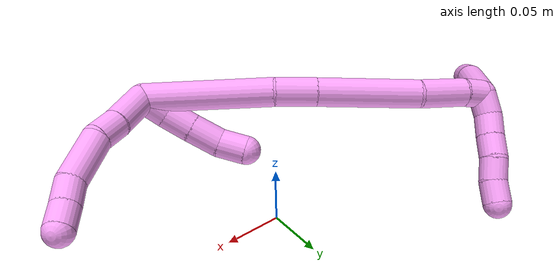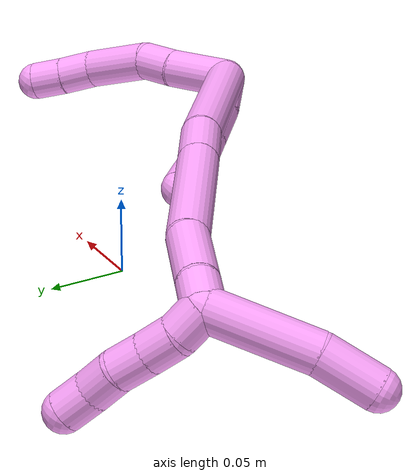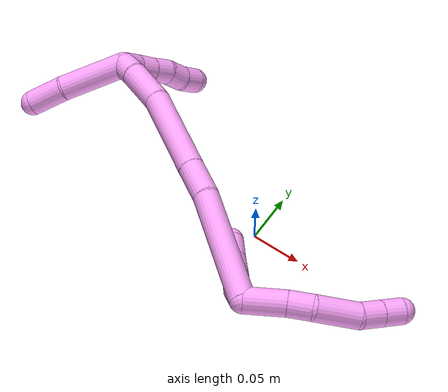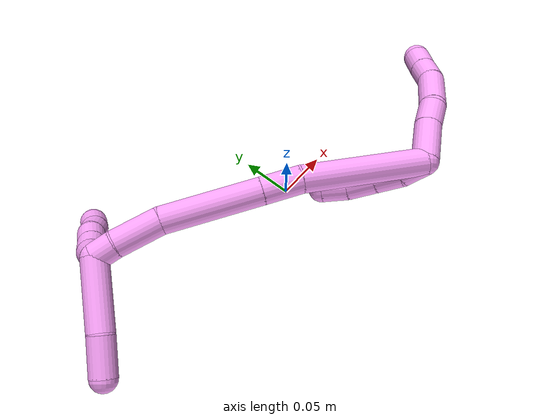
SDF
<sdf version="1.7">
 <world name="default">
  <model name="4">
   <static>0</static>
   <link name="4">
    <collision name="collision-cylinder-e_1_2_8">
     <pose>0.001912 0.008904 0.017924 -0.461066 0.09525 -0.022372</pose>
     <geometry><cylinder><radius>0.0125</radius><length>0.040209</length></cylinder></geometry>
     <surface>
      <friction><ode><mu>1.16</mu><mu2>1.16</mu2><slip1>0</slip1><slip2>0</slip2></ode></friction>
      <contact><ode><kp>1e+06</kp><kd>1</kd><max_vel>0</max_vel><min_depth>0.001</min_depth></ode></contact>
     </surface>
    </collision>
    <visual name="visual-cylinder-e_1_2_8">
     <pose>0.001912 0.008904 0.017924 -0.461066 0.09525 -0.022372</pose>
     <geometry><cylinder><radius>0.0125</radius><length>0.040209</length></cylinder></geometry>
     <material><ambient>1 0.65098 0.996078 1</ambient></material>
    </visual>
    <collision name="collision-cylinder-e_2_8_9">
     <pose>0.00634 0.023 0.046145 -0.467008 0.214758 -0.051265</pose>
     <geometry><cylinder><radius>0.0125</radius><length>0.023607</length></cylinder></geometry>
     <surface>
      <friction><ode><mu>1.16</mu><mu2>1.16</mu2><slip1>0</slip1><slip2>0</slip2></ode></friction>
      <contact><ode><kp>1e+06</kp><kd>1</kd><max_vel>0</max_vel><min_depth>0.001</min_depth></ode></contact>
     </surface>
    </collision>
    <visual name="visual-cylinder-e_2_8_9">
     <pose>0.00634 0.023 0.046145 -0.467008 0.214758 -0.051265</pose>
     <geometry><cylinder><radius>0.0125</radius><length>0.023607</length></cylinder></geometry>
     <material><ambient>1 0.65098 0.996078 1</ambient></material>
    </visual>
    <collision name="collision-cylinder-e_3_9_10">
     <pose>0.008455 0.042593 0.072645 -0.726604 -0.018433 0.007008</pose>
     <geometry><cylinder><radius>0.0125</radius><length>0.043362</length></cylinder></geometry>
     <surface>
      <friction><ode><mu>1.16</mu><mu2>1.16</mu2><slip1>0</slip1><slip2>0</slip2></ode></friction>
      <contact><ode><kp>1e+06</kp><kd>1</kd><max_vel>0</max_vel><min_depth>0.001</min_depth></ode></contact>
     </surface>
    </collision>
    <visual name="visual-cylinder-e_3_9_10">
     <pose>0.008455 0.042593 0.072645 -0.726604 -0.018433 0.007008</pose>
     <geometry><cylinder><radius>0.0125</radius><length>0.043362</length></cylinder></geometry>
     <material><ambient>1 0.65098 0.996078 1</ambient></material>
    </visual>
    <collision name="collision-cylinder-e_4_10_11">
     <pose>0.004544 0.063491 0.097088 -0.667565 -0.322924 0.112839</pose>
     <geometry><cylinder><radius>0.0125</radius><length>0.022131</length></cylinder></geometry>
     <surface>
      <friction><ode><mu>1.16</mu><mu2>1.16</mu2><slip1>0</slip1><slip2>0</slip2></ode></friction>
      <contact><ode><kp>1e+06</kp><kd>1</kd><max_vel>0</max_vel><min_depth>0.001</min_depth></ode></contact>
     </surface>
    </collision>
    <visual name="visual-cylinder-e_4_10_11">
     <pose>0.004544 0.063491 0.097088 -0.667565 -0.322924 0.112839</pose>
     <geometry><cylinder><radius>0.0125</radius><length>0.022131</length></cylinder></geometry>
     <material><ambient>1 0.65098 0.996078 1</ambient></material>
    </visual>
    <collision name="collision-cylinder-e_5_11_6">
     <pose>-0.001959 0.075778 0.113362 -0.624609 -0.29336 0.09533</pose>
     <geometry><cylinder><radius>0.0125</radius><length>0.02069</length></cylinder></geometry>
     <surface>
      <friction><ode><mu>1.16</mu><mu2>1.16</mu2><slip1>0</slip1><slip2>0</slip2></ode></friction>
      <contact><ode><kp>1e+06</kp><kd>1</kd><max_vel>0</max_vel><min_depth>0.001</min_depth></ode></contact>
     </surface>
    </collision>
    <visual name="visual-cylinder-e_5_11_6">
     <pose>-0.001959 0.075778 0.113362 -0.624609 -0.29336 0.09533</pose>
     <geometry><cylinder><radius>0.0125</radius><length>0.02069</length></cylinder></geometry>
     <material><ambient>1 0.65098 0.996078 1</ambient></material>
    </visual>
    <collision name="collision-cylinder-e_1_2_12">
     <pose>-0.010561 0.003846 -0.003826 -2.35356 -1.09631 1.94596</pose>
     <geometry><cylinder><radius>0.0125</radius><length>0.023746</length></cylinder></geometry>
     <surface>
      <friction><ode><mu>1.16</mu><mu2>1.16</mu2><slip1>0</slip1><slip2>0</slip2></ode></friction>
      <contact><ode><kp>1e+06</kp><kd>1</kd><max_vel>0</max_vel><min_depth>0.001</min_depth></ode></contact>
     </surface>
    </collision>
    <visual name="visual-cylinder-e_1_2_12">
     <pose>-0.010561 0.003846 -0.003826 -2.35356 -1.09631 1.94596</pose>
     <geometry><cylinder><radius>0.0125</radius><length>0.023746</length></cylinder></geometry>
     <material><ambient>1 0.65098 0.996078 1</ambient></material>
    </visual>
    <collision name="collision-cylinder-e_2_12_13">
     <pose>-0.033135 0.010442 -0.009337 -2.12077 -1.30845 1.88032</pose>
     <geometry><cylinder><radius>0.0125</radius><length>0.024876</length></cylinder></geometry>
     <surface>
      <friction><ode><mu>1.16</mu><mu2>1.16</mu2><slip1>0</slip1><slip2>0</slip2></ode></friction>
      <contact><ode><kp>1e+06</kp><kd>1</kd><max_vel>0</max_vel><min_depth>0.001</min_depth></ode></contact>
     </surface>
    </collision>
    <visual name="visual-cylinder-e_2_12_13">
     <pose>-0.033135 0.010442 -0.009337 -2.12077 -1.30845 1.88032</pose>
     <geometry><cylinder><radius>0.0125</radius><length>0.024876</length></cylinder></geometry>
     <material><ambient>1 0.65098 0.996078 1</ambient></material>
    </visual>
    <collision name="collision-cylinder-e_3_13_14">
     <pose>-0.058405 0.015818 -0.012969 -2.20848 -1.32906 1.99886</pose>
     <geometry><cylinder><radius>0.0125</radius><length>0.027308</length></cylinder></geometry>
     <surface>
      <friction><ode><mu>1.16</mu><mu2>1.16</mu2><slip1>0</slip1><slip2>0</slip2></ode></friction>
      <contact><ode><kp>1e+06</kp><kd>1</kd><max_vel>0</max_vel><min_depth>0.001</min_depth></ode></contact>
     </surface>
    </collision>
    <visual name="visual-cylinder-e_3_13_14">
     <pose>-0.058405 0.015818 -0.012969 -2.20848 -1.32906 1.99886</pose>
     <geometry><cylinder><radius>0.0125</radius><length>0.027308</length></cylinder></geometry>
     <material><ambient>1 0.65098 0.996078 1</ambient></material>
    </visual>
    <collision name="collision-cylinder-e_4_14_5">
     <pose>-0.083664 0.017636 -0.015286 2.00098 -1.49684 -1.9327</pose>
     <geometry><cylinder><radius>0.0125</radius><length>0.02407</length></cylinder></geometry>
     <surface>
      <friction><ode><mu>1.16</mu><mu2>1.16</mu2><slip1>0</slip1><slip2>0</slip2></ode></friction>
      <contact><ode><kp>1e+06</kp><kd>1</kd><max_vel>0</max_vel><min_depth>0.001</min_depth></ode></contact>
     </surface>
    </collision>
    <visual name="visual-cylinder-e_4_14_5">
     <pose>-0.083664 0.017636 -0.015286 2.00098 -1.49684 -1.9327</pose>
     <geometry><cylinder><radius>0.0125</radius><length>0.02407</length></cylinder></geometry>
     <material><ambient>1 0.65098 0.996078 1</ambient></material>
    </visual>
    <collision name="collision-cylinder-e_1_2_15">
     <pose>-0.05178 -0.019828 -0.007558 1.93499 -1.18187 -1.5442</pose>
     <geometry><cylinder><radius>0.0125</radius><length>0.111919</length></cylinder></geometry>
     <surface>
      <friction><ode><mu>1.16</mu><mu2>1.16</mu2><slip1>0</slip1><slip2>0</slip2></ode></friction>
      <contact><ode><kp>1e+06</kp><kd>1</kd><max_vel>0</max_vel><min_depth>0.001</min_depth></ode></contact>
     </surface>
    </collision>
    <visual name="visual-cylinder-e_1_2_15">
     <pose>-0.05178 -0.019828 -0.007558 1.93499 -1.18187 -1.5442</pose>
     <geometry><cylinder><radius>0.0125</radius><length>0.111919</length></cylinder></geometry>
     <material><ambient>1 0.65098 0.996078 1</ambient></material>
    </visual>
    <collision name="collision-cylinder-e_2_15_16">
     <pose>-0.11999 -0.044639 -0.019926 2.33849 -1.17185 -2.00324</pose>
     <geometry><cylinder><radius>0.0125</radius><length>0.035659</length></cylinder></geometry>
     <surface>
      <friction><ode><mu>1.16</mu><mu2>1.16</mu2><slip1>0</slip1><slip2>0</slip2></ode></friction>
      <contact><ode><kp>1e+06</kp><kd>1</kd><max_vel>0</max_vel><min_depth>0.001</min_depth></ode></contact>
     </surface>
    </collision>
    <visual name="visual-cylinder-e_2_15_16">
     <pose>-0.11999 -0.044639 -0.019926 2.33849 -1.17185 -2.00324</pose>
     <geometry><cylinder><radius>0.0125</radius><length>0.035659</length></cylinder></geometry>
     <material><ambient>1 0.65098 0.996078 1</ambient></material>
    </visual>
    <collision name="collision-cylinder-e_3_16_17">
     <pose>-0.178052 -0.061618 -0.036522 2.34739 -1.1869 -2.02914</pose>
     <geometry><cylinder><radius>0.0125</radius><length>0.089801</length></cylinder></geometry>
     <surface>
      <friction><ode><mu>1.16</mu><mu2>1.16</mu2><slip1>0</slip1><slip2>0</slip2></ode></friction>
      <contact><ode><kp>1e+06</kp><kd>1</kd><max_vel>0</max_vel><min_depth>0.001</min_depth></ode></contact>
     </surface>
    </collision>
    <visual name="visual-cylinder-e_3_16_17">
     <pose>-0.178052 -0.061618 -0.036522 2.34739 -1.1869 -2.02914</pose>
     <geometry><cylinder><radius>0.0125</radius><length>0.089801</length></cylinder></geometry>
     <material><ambient>1 0.65098 0.996078 1</ambient></material>
    </visual>
    <collision name="collision-cylinder-e_4_17_18">
     <pose>-0.237816 -0.079326 -0.05788 2.60347 -1.01956 -2.22516</pose>
     <geometry><cylinder><radius>0.0125</radius><length>0.042567</length></cylinder></geometry>
     <surface>
      <friction><ode><mu>1.16</mu><mu2>1.16</mu2><slip1>0</slip1><slip2>0</slip2></ode></friction>
      <contact><ode><kp>1e+06</kp><kd>1</kd><max_vel>0</max_vel><min_depth>0.001</min_depth></ode></contact>
     </surface>
    </collision>
    <visual name="visual-cylinder-e_4_17_18">
     <pose>-0.237816 -0.079326 -0.05788 2.60347 -1.01956 -2.22516</pose>
     <geometry><cylinder><radius>0.0125</radius><length>0.042567</length></cylinder></geometry>
     <material><ambient>1 0.65098 0.996078 1</ambient></material>
    </visual>
    <collision name="collision-cylinder-e_5_18_1">
     <pose>-0.264433 -0.086439 -0.072605 2.87631 -1.00917 -2.6675</pose>
     <geometry><cylinder><radius>0.0125</radius><length>0.020053</length></cylinder></geometry>
     <surface>
      <friction><ode><mu>1.16</mu><mu2>1.16</mu2><slip1>0</slip1><slip2>0</slip2></ode></friction>
      <contact><ode><kp>1e+06</kp><kd>1</kd><max_vel>0</max_vel><min_depth>0.001</min_depth></ode></contact>
     </surface>
    </collision>
    <visual name="visual-cylinder-e_5_18_1">
     <pose>-0.264433 -0.086439 -0.072605 2.87631 -1.00917 -2.6675</pose>
     <geometry><cylinder><radius>0.0125</radius><length>0.020053</length></cylinder></geometry>
     <material><ambient>1 0.65098 0.996078 1</ambient></material>
    </visual>
    <collision name="collision-cylinder-e_1_1_19">
     <pose>-0.268862 -0.090114 -0.109686 3.07048 0.126083 2.11529</pose>
     <geometry><cylinder><radius>0.0125</radius><length>0.064531</length></cylinder></geometry>
     <surface>
      <friction><ode><mu>1.16</mu><mu2>1.16</mu2><slip1>0</slip1><slip2>0</slip2></ode></friction>
      <contact><ode><kp>1e+06</kp><kd>1</kd><max_vel>0</max_vel><min_depth>0.001</min_depth></ode></contact>
     </surface>
    </collision>
    <visual name="visual-cylinder-e_1_1_19">
     <pose>-0.268862 -0.090114 -0.109686 3.07048 0.126083 2.11529</pose>
     <geometry><cylinder><radius>0.0125</radius><length>0.064531</length></cylinder></geometry>
     <material><ambient>1 0.65098 0.996078 1</ambient></material>
    </visual>
    <collision name="collision-cylinder-e_2_19_4">
     <pose>-0.264264 -0.090958 -0.159283 -3.06084 0.0305 -0.721914</pose>
     <geometry><cylinder><radius>0.0125</radius><length>0.035469</length></cylinder></geometry>
     <surface>
      <friction><ode><mu>1.16</mu><mu2>1.16</mu2><slip1>0</slip1><slip2>0</slip2></ode></friction>
      <contact><ode><kp>1e+06</kp><kd>1</kd><max_vel>0</max_vel><min_depth>0.001</min_depth></ode></contact>
     </surface>
    </collision>
    <visual name="visual-cylinder-e_2_19_4">
     <pose>-0.264264 -0.090958 -0.159283 -3.06084 0.0305 -0.721914</pose>
     <geometry><cylinder><radius>0.0125</radius><length>0.035469</length></cylinder></geometry>
     <material><ambient>1 0.65098 0.996078 1</ambient></material>
    </visual>
    <collision name="collision-cylinder-e_1_1_20">
     <pose>-0.278517 -0.07999 -0.075102 -1.24449 -0.594042 0.432239</pose>
     <geometry><cylinder><radius>0.0125</radius><length>0.02</length></cylinder></geometry>
     <surface>
      <friction><ode><mu>1.16</mu><mu2>1.16</mu2><slip1>0</slip1><slip2>0</slip2></ode></friction>
      <contact><ode><kp>1e+06</kp><kd>1</kd><max_vel>0</max_vel><min_depth>0.001</min_depth></ode></contact>
     </surface>
    </collision>
    <visual name="visual-cylinder-e_1_1_20">
     <pose>-0.278517 -0.07999 -0.075102 -1.24449 -0.594042 0.432239</pose>
     <geometry><cylinder><radius>0.0125</radius><length>0.02</length></cylinder></geometry>
     <material><ambient>1 0.65098 0.996078 1</ambient></material>
    </visual>
    <collision name="collision-cylinder-e_2_20_21">
     <pose>-0.287766 -0.064131 -0.067701 -1.03601 -0.373862 0.214758</pose>
     <geometry><cylinder><radius>0.0125</radius><length>0.02</length></cylinder></geometry>
     <surface>
      <friction><ode><mu>1.16</mu><mu2>1.16</mu2><slip1>0</slip1><slip2>0</slip2></ode></friction>
      <contact><ode><kp>1e+06</kp><kd>1</kd><max_vel>0</max_vel><min_depth>0.001</min_depth></ode></contact>
     </surface>
    </collision>
    <visual name="visual-cylinder-e_2_20_21">
     <pose>-0.287766 -0.064131 -0.067701 -1.03601 -0.373862 0.214758</pose>
     <geometry><cylinder><radius>0.0125</radius><length>0.02</length></cylinder></geometry>
     <material><ambient>1 0.65098 0.996078 1</ambient></material>
    </visual>
    <collision name="collision-cylinder-e_3_21_22">
     <pose>-0.295421 -0.04848 -0.057898 -0.986054 -0.411798 0.223497</pose>
     <geometry><cylinder><radius>0.0125</radius><length>0.02</length></cylinder></geometry>
     <surface>
      <friction><ode><mu>1.16</mu><mu2>1.16</mu2><slip1>0</slip1><slip2>0</slip2></ode></friction>
      <contact><ode><kp>1e+06</kp><kd>1</kd><max_vel>0</max_vel><min_depth>0.001</min_depth></ode></contact>
     </surface>
    </collision>
    <visual name="visual-cylinder-e_3_21_22">
     <pose>-0.295421 -0.04848 -0.057898 -0.986054 -0.411798 0.223497</pose>
     <geometry><cylinder><radius>0.0125</radius><length>0.02</length></cylinder></geometry>
     <material><ambient>1 0.65098 0.996078 1</ambient></material>
    </visual>
    <collision name="collision-cylinder-e_4_22_23">
     <pose>-0.302126 -0.031885 -0.049299 -1.19427 -0.273697 0.186723</pose>
     <geometry><cylinder><radius>0.0125</radius><length>0.02</length></cylinder></geometry>
     <surface>
      <friction><ode><mu>1.16</mu><mu2>1.16</mu2><slip1>0</slip1><slip2>0</slip2></ode></friction>
      <contact><ode><kp>1e+06</kp><kd>1</kd><max_vel>0</max_vel><min_depth>0.001</min_depth></ode></contact>
     </surface>
    </collision>
    <visual name="visual-cylinder-e_4_22_23">
     <pose>-0.302126 -0.031885 -0.049299 -1.19427 -0.273697 0.186723</pose>
     <geometry><cylinder><radius>0.0125</radius><length>0.02</length></cylinder></geometry>
     <material><ambient>1 0.65098 0.996078 1</ambient></material>
    </visual>
    <collision name="collision-cylinder-e_5_23_3">
     <pose>-0.309362 -0.015016 -0.041661 -1.09301 -0.470422 0.289519</pose>
     <geometry><cylinder><radius>0.0125</radius><length>0.02</length></cylinder></geometry>
     <surface>
      <friction><ode><mu>1.16</mu><mu2>1.16</mu2><slip1>0</slip1><slip2>0</slip2></ode></friction>
      <contact><ode><kp>1e+06</kp><kd>1</kd><max_vel>0</max_vel><min_depth>0.001</min_depth></ode></contact>
     </surface>
    </collision>
    <visual name="visual-cylinder-e_5_23_3">
     <pose>-0.309362 -0.015016 -0.041661 -1.09301 -0.470422 0.289519</pose>
     <geometry><cylinder><radius>0.0125</radius><length>0.02</length></cylinder></geometry>
     <material><ambient>1 0.65098 0.996078 1</ambient></material>
    </visual>
    <collision name="collision-sphere-3">
     <pose>-0.313894 -0.007101 -0.037562 0 -0 0</pose>
     <geometry><sphere><radius>0.0125</radius></sphere></geometry>
     <surface>
      <friction><ode><mu>1.16</mu><mu2>1.16</mu2><slip1>0</slip1><slip2>0</slip2></ode></friction>
      <contact><ode><kp>1e+06</kp><kd>1</kd><max_vel>0</max_vel><min_depth>0.001</min_depth></ode></contact>
     </surface>
    </collision>
    <visual name="visual-sphere-3">
     <pose>-0.313894 -0.007101 -0.037562 0 -0 0</pose>
     <geometry><sphere><radius>0.0125</radius></sphere></geometry>
     <material><ambient>1 0.65098 0.996078 1</ambient></material>
    </visual>
    <collision name="collision-sphere-23">
     <pose>-0.304829 -0.022932 -0.045759 0 -0 0</pose>
     <geometry><sphere><radius>0.0125</radius></sphere></geometry>
     <surface>
      <friction><ode><mu>1.16</mu><mu2>1.16</mu2><slip1>0</slip1><slip2>0</slip2></ode></friction>
      <contact><ode><kp>1e+06</kp><kd>1</kd><max_vel>0</max_vel><min_depth>0.001</min_depth></ode></contact>
     </surface>
    </collision>
    <visual name="visual-sphere-23">
     <pose>-0.304829 -0.022932 -0.045759 0 -0 0</pose>
     <geometry><sphere><radius>0.0125</radius></sphere></geometry>
     <material><ambient>1 0.65098 0.996078 1</ambient></material>
    </visual>
    <collision name="collision-sphere-22">
     <pose>-0.299423 -0.040838 -0.052839 0 -0 0</pose>
     <geometry><sphere><radius>0.0125</radius></sphere></geometry>
     <surface>
      <friction><ode><mu>1.16</mu><mu2>1.16</mu2><slip1>0</slip1><slip2>0</slip2></ode></friction>
      <contact><ode><kp>1e+06</kp><kd>1</kd><max_vel>0</max_vel><min_depth>0.001</min_depth></ode></contact>
     </surface>
    </collision>
    <visual name="visual-sphere-22">
     <pose>-0.299423 -0.040838 -0.052839 0 -0 0</pose>
     <geometry><sphere><radius>0.0125</radius></sphere></geometry>
     <material><ambient>1 0.65098 0.996078 1</ambient></material>
    </visual>
    <collision name="collision-sphere-21">
     <pose>-0.291418 -0.056121 -0.062956 0 -0 0</pose>
     <geometry><sphere><radius>0.0125</radius></sphere></geometry>
     <surface>
      <friction><ode><mu>1.16</mu><mu2>1.16</mu2><slip1>0</slip1><slip2>0</slip2></ode></friction>
      <contact><ode><kp>1e+06</kp><kd>1</kd><max_vel>0</max_vel><min_depth>0.001</min_depth></ode></contact>
     </surface>
    </collision>
    <visual name="visual-sphere-21">
     <pose>-0.291418 -0.056121 -0.062956 0 -0 0</pose>
     <geometry><sphere><radius>0.0125</radius></sphere></geometry>
     <material><ambient>1 0.65098 0.996078 1</ambient></material>
    </visual>
    <collision name="collision-sphere-20">
     <pose>-0.284114 -0.07214 -0.072445 0 -0 0</pose>
     <geometry><sphere><radius>0.0125</radius></sphere></geometry>
     <surface>
      <friction><ode><mu>1.16</mu><mu2>1.16</mu2><slip1>0</slip1><slip2>0</slip2></ode></friction>
      <contact><ode><kp>1e+06</kp><kd>1</kd><max_vel>0</max_vel><min_depth>0.001</min_depth></ode></contact>
     </surface>
    </collision>
    <visual name="visual-sphere-20">
     <pose>-0.284114 -0.07214 -0.072445 0 -0 0</pose>
     <geometry><sphere><radius>0.0125</radius></sphere></geometry>
     <material><ambient>1 0.65098 0.996078 1</ambient></material>
    </visual>
    <collision name="collision-sphere-4">
     <pose>-0.263723 -0.089528 -0.176952 0 -0 0</pose>
     <geometry><sphere><radius>0.0125</radius></sphere></geometry>
     <surface>
      <friction><ode><mu>1.16</mu><mu2>1.16</mu2><slip1>0</slip1><slip2>0</slip2></ode></friction>
      <contact><ode><kp>1e+06</kp><kd>1</kd><max_vel>0</max_vel><min_depth>0.001</min_depth></ode></contact>
     </surface>
    </collision>
    <visual name="visual-sphere-4">
     <pose>-0.263723 -0.089528 -0.176952 0 -0 0</pose>
     <geometry><sphere><radius>0.0125</radius></sphere></geometry>
     <material><ambient>1 0.65098 0.996078 1</ambient></material>
    </visual>
    <collision name="collision-sphere-6">
     <pose>-0.00495 0.081569 0.121396 0 -0 0</pose>
     <geometry><sphere><radius>0.0125</radius></sphere></geometry>
     <surface>
      <friction><ode><mu>1.16</mu><mu2>1.16</mu2><slip1>0</slip1><slip2>0</slip2></ode></friction>
      <contact><ode><kp>1e+06</kp><kd>1</kd><max_vel>0</max_vel><min_depth>0.001</min_depth></ode></contact>
     </surface>
    </collision>
    <visual name="visual-sphere-6">
     <pose>-0.00495 0.081569 0.121396 0 -0 0</pose>
     <geometry><sphere><radius>0.0125</radius></sphere></geometry>
     <material><ambient>1 0.65098 0.996078 1</ambient></material>
    </visual>
    <collision name="collision-sphere-11">
     <pose>0.001033 0.069987 0.105329 0 -0 0</pose>
     <geometry><sphere><radius>0.0125</radius></sphere></geometry>
     <surface>
      <friction><ode><mu>1.16</mu><mu2>1.16</mu2><slip1>0</slip1><slip2>0</slip2></ode></friction>
      <contact><ode><kp>1e+06</kp><kd>1</kd><max_vel>0</max_vel><min_depth>0.001</min_depth></ode></contact>
     </surface>
    </collision>
    <visual name="visual-sphere-11">
     <pose>0.001033 0.069987 0.105329 0 -0 0</pose>
     <geometry><sphere><radius>0.0125</radius></sphere></geometry>
     <material><ambient>1 0.65098 0.996078 1</ambient></material>
    </visual>
    <collision name="collision-sphere-10">
     <pose>0.008056 0.056994 0.088847 0 -0 0</pose>
     <geometry><sphere><radius>0.0125</radius></sphere></geometry>
     <surface>
      <friction><ode><mu>1.16</mu><mu2>1.16</mu2><slip1>0</slip1><slip2>0</slip2></ode></friction>
      <contact><ode><kp>1e+06</kp><kd>1</kd><max_vel>0</max_vel><min_depth>0.001</min_depth></ode></contact>
     </surface>
    </collision>
    <visual name="visual-sphere-10">
     <pose>0.008056 0.056994 0.088847 0 -0 0</pose>
     <geometry><sphere><radius>0.0125</radius></sphere></geometry>
     <material><ambient>1 0.65098 0.996078 1</ambient></material>
    </visual>
    <collision name="collision-sphere-9">
     <pose>0.008855 0.028192 0.056442 0 -0 0</pose>
     <geometry><sphere><radius>0.0125</radius></sphere></geometry>
     <surface>
      <friction><ode><mu>1.16</mu><mu2>1.16</mu2><slip1>0</slip1><slip2>0</slip2></ode></friction>
      <contact><ode><kp>1e+06</kp><kd>1</kd><max_vel>0</max_vel><min_depth>0.001</min_depth></ode></contact>
     </surface>
    </collision>
    <visual name="visual-sphere-9">
     <pose>0.008855 0.028192 0.056442 0 -0 0</pose>
     <geometry><sphere><radius>0.0125</radius></sphere></geometry>
     <material><ambient>1 0.65098 0.996078 1</ambient></material>
    </visual>
    <collision name="collision-sphere-2">
     <geometry><sphere><radius>0.0125</radius></sphere></geometry>
     <surface>
      <friction><ode><mu>1.16</mu><mu2>1.16</mu2><slip1>0</slip1><slip2>0</slip2></ode></friction>
      <contact><ode><kp>1e+06</kp><kd>1</kd><max_vel>0</max_vel><min_depth>0.001</min_depth></ode></contact>
     </surface>
    </collision>
    <visual name="visual-sphere-2">
     <geometry><sphere><radius>0.0125</radius></sphere></geometry>
     <material><ambient>1 0.65098 0.996078 1</ambient></material>
    </visual>
    <collision name="collision-sphere-19">
     <pose>-0.264805 -0.092388 -0.141615 0 -0 0</pose>
     <geometry><sphere><radius>0.0125</radius></sphere></geometry>
     <surface>
      <friction><ode><mu>1.16</mu><mu2>1.16</mu2><slip1>0</slip1><slip2>0</slip2></ode></friction>
      <contact><ode><kp>1e+06</kp><kd>1</kd><max_vel>0</max_vel><min_depth>0.001</min_depth></ode></contact>
     </surface>
    </collision>
    <visual name="visual-sphere-19">
     <pose>-0.264805 -0.092388 -0.141615 0 -0 0</pose>
     <geometry><sphere><radius>0.0125</radius></sphere></geometry>
     <material><ambient>1 0.65098 0.996078 1</ambient></material>
    </visual>
    <collision name="collision-sphere-8">
     <pose>0.003824 0.017808 0.035847 0 -0 0</pose>
     <geometry><sphere><radius>0.0125</radius></sphere></geometry>
     <surface>
      <friction><ode><mu>1.16</mu><mu2>1.16</mu2><slip1>0</slip1><slip2>0</slip2></ode></friction>
      <contact><ode><kp>1e+06</kp><kd>1</kd><max_vel>0</max_vel><min_depth>0.001</min_depth></ode></contact>
     </surface>
    </collision>
    <visual name="visual-sphere-8">
     <pose>0.003824 0.017808 0.035847 0 -0 0</pose>
     <geometry><sphere><radius>0.0125</radius></sphere></geometry>
     <material><ambient>1 0.65098 0.996078 1</ambient></material>
    </visual>
    <collision name="collision-sphere-12">
     <pose>-0.021123 0.007692 -0.007651 0 -0 0</pose>
     <geometry><sphere><radius>0.0125</radius></sphere></geometry>
     <surface>
      <friction><ode><mu>1.16</mu><mu2>1.16</mu2><slip1>0</slip1><slip2>0</slip2></ode></friction>
      <contact><ode><kp>1e+06</kp><kd>1</kd><max_vel>0</max_vel><min_depth>0.001</min_depth></ode></contact>
     </surface>
    </collision>
    <visual name="visual-sphere-12">
     <pose>-0.021123 0.007692 -0.007651 0 -0 0</pose>
     <geometry><sphere><radius>0.0125</radius></sphere></geometry>
     <material><ambient>1 0.65098 0.996078 1</ambient></material>
    </visual>
    <collision name="collision-sphere-13">
     <pose>-0.045148 0.013192 -0.011023 0 -0 0</pose>
     <geometry><sphere><radius>0.0125</radius></sphere></geometry>
     <surface>
      <friction><ode><mu>1.16</mu><mu2>1.16</mu2><slip1>0</slip1><slip2>0</slip2></ode></friction>
      <contact><ode><kp>1e+06</kp><kd>1</kd><max_vel>0</max_vel><min_depth>0.001</min_depth></ode></contact>
     </surface>
    </collision>
    <visual name="visual-sphere-13">
     <pose>-0.045148 0.013192 -0.011023 0 -0 0</pose>
     <geometry><sphere><radius>0.0125</radius></sphere></geometry>
     <material><ambient>1 0.65098 0.996078 1</ambient></material>
    </visual>
    <collision name="collision-sphere-14">
     <pose>-0.071662 0.018445 -0.014915 0 -0 0</pose>
     <geometry><sphere><radius>0.0125</radius></sphere></geometry>
     <surface>
      <friction><ode><mu>1.16</mu><mu2>1.16</mu2><slip1>0</slip1><slip2>0</slip2></ode></friction>
      <contact><ode><kp>1e+06</kp><kd>1</kd><max_vel>0</max_vel><min_depth>0.001</min_depth></ode></contact>
     </surface>
    </collision>
    <visual name="visual-sphere-14">
     <pose>-0.071662 0.018445 -0.014915 0 -0 0</pose>
     <geometry><sphere><radius>0.0125</radius></sphere></geometry>
     <material><ambient>1 0.65098 0.996078 1</ambient></material>
    </visual>
    <collision name="collision-sphere-5">
     <pose>-0.095666 0.016828 -0.015657 0 -0 0</pose>
     <geometry><sphere><radius>0.0125</radius></sphere></geometry>
     <surface>
      <friction><ode><mu>1.16</mu><mu2>1.16</mu2><slip1>0</slip1><slip2>0</slip2></ode></friction>
      <contact><ode><kp>1e+06</kp><kd>1</kd><max_vel>0</max_vel><min_depth>0.001</min_depth></ode></contact>
     </surface>
    </collision>
    <visual name="visual-sphere-5">
     <pose>-0.095666 0.016828 -0.015657 0 -0 0</pose>
     <geometry><sphere><radius>0.0125</radius></sphere></geometry>
     <material><ambient>1 0.65098 0.996078 1</ambient></material>
    </visual>
    <collision name="collision-sphere-15">
     <pose>-0.10356 -0.039655 -0.015116 0 -0 0</pose>
     <geometry><sphere><radius>0.0125</radius></sphere></geometry>
     <surface>
      <friction><ode><mu>1.16</mu><mu2>1.16</mu2><slip1>0</slip1><slip2>0</slip2></ode></friction>
      <contact><ode><kp>1e+06</kp><kd>1</kd><max_vel>0</max_vel><min_depth>0.001</min_depth></ode></contact>
     </surface>
    </collision>
    <visual name="visual-sphere-15">
     <pose>-0.10356 -0.039655 -0.015116 0 -0 0</pose>
     <geometry><sphere><radius>0.0125</radius></sphere></geometry>
     <material><ambient>1 0.65098 0.996078 1</ambient></material>
    </visual>
    <collision name="collision-sphere-16">
     <pose>-0.13642 -0.049622 -0.024736 0 -0 0</pose>
     <geometry><sphere><radius>0.0125</radius></sphere></geometry>
     <surface>
      <friction><ode><mu>1.16</mu><mu2>1.16</mu2><slip1>0</slip1><slip2>0</slip2></ode></friction>
      <contact><ode><kp>1e+06</kp><kd>1</kd><max_vel>0</max_vel><min_depth>0.001</min_depth></ode></contact>
     </surface>
    </collision>
    <visual name="visual-sphere-16">
     <pose>-0.13642 -0.049622 -0.024736 0 -0 0</pose>
     <geometry><sphere><radius>0.0125</radius></sphere></geometry>
     <material><ambient>1 0.65098 0.996078 1</ambient></material>
    </visual>
    <collision name="collision-sphere-17">
     <pose>-0.219685 -0.073613 -0.048308 0 -0 0</pose>
     <geometry><sphere><radius>0.0125</radius></sphere></geometry>
     <surface>
      <friction><ode><mu>1.16</mu><mu2>1.16</mu2><slip1>0</slip1><slip2>0</slip2></ode></friction>
      <contact><ode><kp>1e+06</kp><kd>1</kd><max_vel>0</max_vel><min_depth>0.001</min_depth></ode></contact>
     </surface>
    </collision>
    <visual name="visual-sphere-17">
     <pose>-0.219685 -0.073613 -0.048308 0 -0 0</pose>
     <geometry><sphere><radius>0.0125</radius></sphere></geometry>
     <material><ambient>1 0.65098 0.996078 1</ambient></material>
    </visual>
    <collision name="collision-sphere-18">
     <pose>-0.255947 -0.085039 -0.067452 0 -0 0</pose>
     <geometry><sphere><radius>0.0125</radius></sphere></geometry>
     <surface>
      <friction><ode><mu>1.16</mu><mu2>1.16</mu2><slip1>0</slip1><slip2>0</slip2></ode></friction>
      <contact><ode><kp>1e+06</kp><kd>1</kd><max_vel>0</max_vel><min_depth>0.001</min_depth></ode></contact>
     </surface>
    </collision>
    <visual name="visual-sphere-18">
     <pose>-0.255947 -0.085039 -0.067452 0 -0 0</pose>
     <geometry><sphere><radius>0.0125</radius></sphere></geometry>
     <material><ambient>1 0.65098 0.996078 1</ambient></material>
    </visual>
    <collision name="collision-sphere-1">
     <pose>-0.272919 -0.087839 -0.077758 0 -0 0</pose>
     <geometry><sphere><radius>0.0125</radius></sphere></geometry>
     <surface>
      <friction><ode><mu>1.16</mu><mu2>1.16</mu2><slip1>0</slip1><slip2>0</slip2></ode></friction>
      <contact><ode><kp>1e+06</kp><kd>1</kd><max_vel>0</max_vel><min_depth>0.001</min_depth></ode></contact>
     </surface>
    </collision>
    <visual name="visual-sphere-1">
     <pose>-0.272919 -0.087839 -0.077758 0 -0 0</pose>
     <geometry><sphere><radius>0.0125</radius></sphere></geometry>
     <material><ambient>1 0.65098 0.996078 1</ambient></material>
    </visual>
    <inertial>
     <pose>-0.135609 -0.028476 -0.025211 0 -0 0</pose>
     <mass>0.75</mass>
     <inertia><ixx>-8e-05</ixx><ixy>0</ixy><ixz>0</ixz><iyy>0.000169</iyy><iyz>0</iyz><izz>0.000237</izz></inertia>
    </inertial>
   </link>
   <pose>0.057923 -0.108964 0.091108 -1.1483 -0.229354 -0.939051</pose>
  </model>
 </world>
</sdf>
